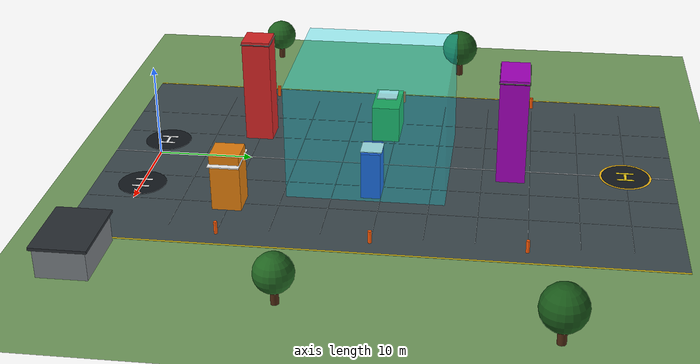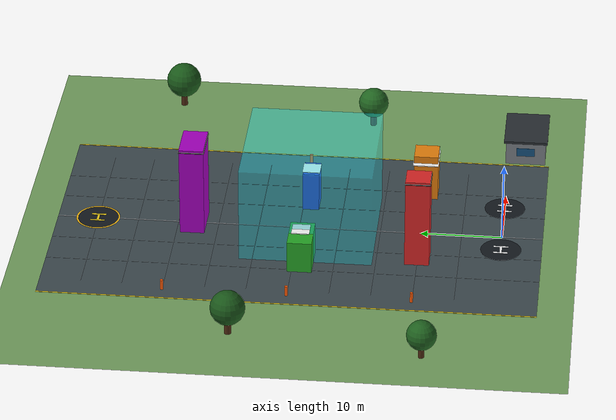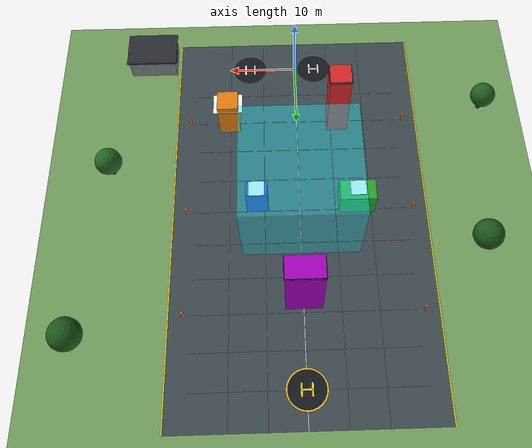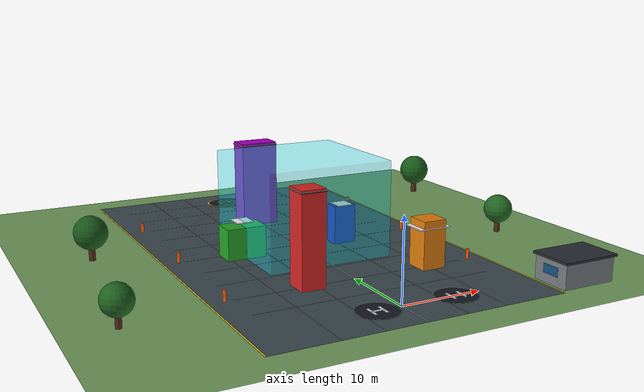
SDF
<?xml version="1.0" ?>
<sdf version="1.9">
  <world name="obstacle_world">

    <physics name="1ms" type="ignored">
      <max_step_size>0.001</max_step_size>
      <real_time_factor>1.0</real_time_factor>
    </physics>

    <scene>
      <ambient>0.72 0.76 0.82 1</ambient>
      <background>0.48 0.68 0.88 1</background>
      <sky/>
      <fog>
        <type>linear</type>
        <color>0.72 0.80 0.88 1</color>
        <start>140</start>
        <end>300</end>
        <density>0.002</density>
      </fog>
    </scene>

    <!-- GPS origin — must match PX4 SITL home position -->
    <spherical_coordinates>
      <surface_model>EARTH_WGS84</surface_model>
      <latitude_deg>47.397742</latitude_deg>
      <longitude_deg>8.545594</longitude_deg>
      <elevation>488.0</elevation>
      <heading_deg>0</heading_deg>
    </spherical_coordinates>

    <light name="sun" type="directional">
      <cast_shadows>true</cast_shadows>
      <pose>0 0 10 0 0 0</pose>
      <diffuse>1.0 1.0 1.0 1</diffuse>
      <specular>0.4 0.4 0.4 1</specular>
      <direction>-0.5 0.1 -0.9</direction>
    </light>

    <!-- ── Ground plane ─────────────────────────────────── -->
    <model name="ground_plane">
      <static>true</static>
      <link name="link">
        <collision name="collision">
          <geometry>
            <plane>
              <normal>0 0 1</normal>
              <size>300 300</size>
            </plane>
          </geometry>
          <surface>
            <friction><ode><mu>100</mu><mu2>50</mu2></ode></friction>
          </surface>
        </collision>
        <visual name="visual">
          <cast_shadows>false</cast_shadows>
          <geometry>
            <plane><normal>0 0 1</normal><size>300 300</size></plane>
          </geometry>
          <material>
            <ambient>0.45 0.62 0.37 1</ambient>
            <diffuse>0.45 0.62 0.37 1</diffuse>
            <specular>0.05 0.05 0.05 1</specular>
          </material>
        </visual>
      </link>
    </model>

    <!-- ── Flight-training course surface and 5 m reference grid ──
         These are visual-only so they do not alter vehicle dynamics. -->
    <model name="training_course">
      <static>true</static>
      <link name="course_markings">
        <visual name="course_surface">
          <pose>0 25 0.012 0 0 0</pose>
          <cast_shadows>false</cast_shadows>
          <geometry><box><size>36 60 0.02</size></box></geometry>
          <material>
            <ambient>0.20 0.25 0.27 1</ambient>
            <diffuse>0.24 0.29 0.31 1</diffuse>
            <specular>0.02 0.02 0.02 1</specular>
          </material>
        </visual>

        <!-- East/west course boundaries at +-18 m; both launch pads sit
             comfortably inside the front of the course. -->
        <visual name="boundary_west">
          <pose>-18 25 0.03 0 0 0</pose>
          <cast_shadows>false</cast_shadows>
          <geometry><box><size>0.18 60 0.025</size></box></geometry>
          <material><ambient>0.95 0.82 0.10 1</ambient><diffuse>0.95 0.82 0.10 1</diffuse></material>
        </visual>
        <visual name="boundary_east">
          <pose>18 25 0.03 0 0 0</pose>
          <cast_shadows>false</cast_shadows>
          <geometry><box><size>0.18 60 0.025</size></box></geometry>
          <material><ambient>0.95 0.82 0.10 1</ambient><diffuse>0.95 0.82 0.10 1</diffuse></material>
        </visual>

        <!-- Longitudinal grid lines at east=-10,-5,0,5,10 m. -->
        <visual name="grid_e_m10"><pose>-10 25 0.028 0 0 0</pose><cast_shadows>false</cast_shadows><geometry><box><size>0.055 60 0.022</size></box></geometry><material><ambient>0.55 0.61 0.63 1</ambient><diffuse>0.55 0.61 0.63 1</diffuse></material></visual>
        <visual name="grid_e_m5"><pose>-5 25 0.028 0 0 0</pose><cast_shadows>false</cast_shadows><geometry><box><size>0.055 60 0.022</size></box></geometry><material><ambient>0.55 0.61 0.63 1</ambient><diffuse>0.55 0.61 0.63 1</diffuse></material></visual>
        <visual name="grid_e_0"><pose>0 25 0.029 0 0 0</pose><cast_shadows>false</cast_shadows><geometry><box><size>0.12 60 0.024</size></box></geometry><material><ambient>0.88 0.90 0.92 1</ambient><diffuse>0.88 0.90 0.92 1</diffuse></material></visual>
        <visual name="grid_e_5"><pose>5 25 0.028 0 0 0</pose><cast_shadows>false</cast_shadows><geometry><box><size>0.055 60 0.022</size></box></geometry><material><ambient>0.55 0.61 0.63 1</ambient><diffuse>0.55 0.61 0.63 1</diffuse></material></visual>
        <visual name="grid_e_10"><pose>10 25 0.028 0 0 0</pose><cast_shadows>false</cast_shadows><geometry><box><size>0.055 60 0.022</size></box></geometry><material><ambient>0.55 0.61 0.63 1</ambient><diffuse>0.55 0.61 0.63 1</diffuse></material></visual>

        <!-- Cross-course grid lines every 5 m north of spawn. -->
        <visual name="grid_n_5"><pose>0 5 0.028 0 0 0</pose><cast_shadows>false</cast_shadows><geometry><box><size>30 0.055 0.022</size></box></geometry><material><ambient>0.55 0.61 0.63 1</ambient><diffuse>0.55 0.61 0.63 1</diffuse></material></visual>
        <visual name="grid_n_10"><pose>0 10 0.028 0 0 0</pose><cast_shadows>false</cast_shadows><geometry><box><size>30 0.055 0.022</size></box></geometry><material><ambient>0.55 0.61 0.63 1</ambient><diffuse>0.55 0.61 0.63 1</diffuse></material></visual>
        <visual name="grid_n_15"><pose>0 15 0.028 0 0 0</pose><cast_shadows>false</cast_shadows><geometry><box><size>30 0.055 0.022</size></box></geometry><material><ambient>0.55 0.61 0.63 1</ambient><diffuse>0.55 0.61 0.63 1</diffuse></material></visual>
        <visual name="grid_n_20"><pose>0 20 0.028 0 0 0</pose><cast_shadows>false</cast_shadows><geometry><box><size>30 0.055 0.022</size></box></geometry><material><ambient>0.55 0.61 0.63 1</ambient><diffuse>0.55 0.61 0.63 1</diffuse></material></visual>
        <visual name="grid_n_25"><pose>0 25 0.028 0 0 0</pose><cast_shadows>false</cast_shadows><geometry><box><size>30 0.055 0.022</size></box></geometry><material><ambient>0.55 0.61 0.63 1</ambient><diffuse>0.55 0.61 0.63 1</diffuse></material></visual>
        <visual name="grid_n_30"><pose>0 30 0.028 0 0 0</pose><cast_shadows>false</cast_shadows><geometry><box><size>30 0.055 0.022</size></box></geometry><material><ambient>0.55 0.61 0.63 1</ambient><diffuse>0.55 0.61 0.63 1</diffuse></material></visual>
        <visual name="grid_n_35"><pose>0 35 0.028 0 0 0</pose><cast_shadows>false</cast_shadows><geometry><box><size>30 0.055 0.022</size></box></geometry><material><ambient>0.55 0.61 0.63 1</ambient><diffuse>0.55 0.61 0.63 1</diffuse></material></visual>
        <visual name="grid_n_40"><pose>0 40 0.028 0 0 0</pose><cast_shadows>false</cast_shadows><geometry><box><size>30 0.055 0.022</size></box></geometry><material><ambient>0.55 0.61 0.63 1</ambient><diffuse>0.55 0.61 0.63 1</diffuse></material></visual>
        <visual name="grid_n_45"><pose>0 45 0.028 0 0 0</pose><cast_shadows>false</cast_shadows><geometry><box><size>30 0.055 0.022</size></box></geometry><material><ambient>0.55 0.61 0.63 1</ambient><diffuse>0.55 0.61 0.63 1</diffuse></material></visual>
        <visual name="grid_n_50"><pose>0 50 0.028 0 0 0</pose><cast_shadows>false</cast_shadows><geometry><box><size>30 0.055 0.022</size></box></geometry><material><ambient>0.55 0.61 0.63 1</ambient><diffuse>0.55 0.61 0.63 1</diffuse></material></visual>

        <!-- High-contrast launch pad (N=0 E=-3) and landing pad (N=50). -->
        <visual name="launch_pad">
          <pose>-3 0 0.045 0 0 0</pose><cast_shadows>false</cast_shadows>
          <geometry><cylinder><radius>2.5</radius><length>0.035</length></cylinder></geometry>
          <material><ambient>0.08 0.10 0.12 1</ambient><diffuse>0.08 0.10 0.12 1</diffuse></material>
        </visual>
        <visual name="launch_h_crossbar"><pose>-3 0 0.07 0 0 0</pose><cast_shadows>false</cast_shadows><geometry><box><size>1.7 0.28 0.025</size></box></geometry><material><ambient>0.95 0.95 0.95 1</ambient><diffuse>0.95 0.95 0.95 1</diffuse></material></visual>
        <visual name="launch_h_left"><pose>-3.7 0 0.07 0 0 0</pose><cast_shadows>false</cast_shadows><geometry><box><size>0.28 1.8 0.025</size></box></geometry><material><ambient>0.95 0.95 0.95 1</ambient><diffuse>0.95 0.95 0.95 1</diffuse></material></visual>
        <visual name="launch_h_right"><pose>-2.3 0 0.07 0 0 0</pose><cast_shadows>false</cast_shadows><geometry><box><size>0.28 1.8 0.025</size></box></geometry><material><ambient>0.95 0.95 0.95 1</ambient><diffuse>0.95 0.95 0.95 1</diffuse></material></visual>

        <!-- Second launch pad (px4_2 home, N=0 E=7), matching the
             original dark disc and white H markings. -->
        <visual name="launch_pad_2">
          <pose>7 0 0.045 0 0 0</pose><cast_shadows>false</cast_shadows>
          <geometry><cylinder><radius>2.5</radius><length>0.035</length></cylinder></geometry>
          <material><ambient>0.08 0.10 0.12 1</ambient><diffuse>0.08 0.10 0.12 1</diffuse></material>
        </visual>
        <visual name="launch_h2_crossbar"><pose>7 0 0.07 0 0 0</pose><cast_shadows>false</cast_shadows><geometry><box><size>1.7 0.28 0.025</size></box></geometry><material><ambient>0.95 0.95 0.95 1</ambient><diffuse>0.95 0.95 0.95 1</diffuse></material></visual>
        <visual name="launch_h2_left"><pose>6.3 0 0.07 0 0 0</pose><cast_shadows>false</cast_shadows><geometry><box><size>0.28 1.8 0.025</size></box></geometry><material><ambient>0.95 0.95 0.95 1</ambient><diffuse>0.95 0.95 0.95 1</diffuse></material></visual>
        <visual name="launch_h2_right"><pose>7.7 0 0.07 0 0 0</pose><cast_shadows>false</cast_shadows><geometry><box><size>0.28 1.8 0.025</size></box></geometry><material><ambient>0.95 0.95 0.95 1</ambient><diffuse>0.95 0.95 0.95 1</diffuse></material></visual>

        <visual name="landing_pad">
          <pose>0 50 0.045 0 0 0</pose><cast_shadows>false</cast_shadows>
          <geometry><cylinder><radius>2.5</radius><length>0.035</length></cylinder></geometry>
          <material><ambient>0.08 0.10 0.12 1</ambient><diffuse>0.08 0.10 0.12 1</diffuse></material>
        </visual>
        <visual name="landing_ring">
          <pose>0 50 0.055 0 0 0</pose><cast_shadows>false</cast_shadows>
          <geometry><cylinder><radius>2.72</radius><length>0.012</length></cylinder></geometry>
          <material>
            <ambient>0.95 0.72 0.08 1</ambient>
            <diffuse>0.95 0.72 0.08 1</diffuse>
            <emissive>0.35 0.22 0.02 1</emissive>
          </material>
        </visual>
        <visual name="landing_h_crossbar"><pose>0 50 0.07 0 0 0</pose><cast_shadows>false</cast_shadows><geometry><box><size>1.7 0.28 0.025</size></box></geometry><material><ambient>0.95 0.82 0.10 1</ambient><diffuse>0.95 0.82 0.10 1</diffuse></material></visual>
        <visual name="landing_h_left"><pose>-0.7 50 0.07 0 0 0</pose><cast_shadows>false</cast_shadows><geometry><box><size>0.28 1.8 0.025</size></box></geometry><material><ambient>0.95 0.82 0.10 1</ambient><diffuse>0.95 0.82 0.10 1</diffuse></material></visual>
        <visual name="landing_h_right"><pose>0.7 50 0.07 0 0 0</pose><cast_shadows>false</cast_shadows><geometry><box><size>0.28 1.8 0.025</size></box></geometry><material><ambient>0.95 0.82 0.10 1</ambient><diffuse>0.95 0.82 0.10 1</diffuse></material></visual>
      </link>
    </model>

    <!-- Safety beacons mark the course perimeter without adding collisions. -->
    <model name="course_beacons">
      <static>true</static>
      <link name="beacons">
        <visual name="west_10"><pose>-16 10 0.65 0 0 0</pose><geometry><cylinder><radius>0.18</radius><length>1.3</length></cylinder></geometry><material><ambient>1 0.35 0.02 1</ambient><diffuse>1 0.35 0.02 1</diffuse><emissive>0.3 0.08 0 1</emissive></material></visual>
        <visual name="east_10"><pose>16 10 0.65 0 0 0</pose><geometry><cylinder><radius>0.18</radius><length>1.3</length></cylinder></geometry><material><ambient>1 0.35 0.02 1</ambient><diffuse>1 0.35 0.02 1</diffuse><emissive>0.3 0.08 0 1</emissive></material></visual>
        <visual name="west_25"><pose>-16 25 0.65 0 0 0</pose><geometry><cylinder><radius>0.18</radius><length>1.3</length></cylinder></geometry><material><ambient>1 0.35 0.02 1</ambient><diffuse>1 0.35 0.02 1</diffuse><emissive>0.3 0.08 0 1</emissive></material></visual>
        <visual name="east_25"><pose>16 25 0.65 0 0 0</pose><geometry><cylinder><radius>0.18</radius><length>1.3</length></cylinder></geometry><material><ambient>1 0.35 0.02 1</ambient><diffuse>1 0.35 0.02 1</diffuse><emissive>0.3 0.08 0 1</emissive></material></visual>
        <visual name="west_40"><pose>-16 40 0.65 0 0 0</pose><geometry><cylinder><radius>0.18</radius><length>1.3</length></cylinder></geometry><material><ambient>1 0.35 0.02 1</ambient><diffuse>1 0.35 0.02 1</diffuse><emissive>0.3 0.08 0 1</emissive></material></visual>
        <visual name="east_40"><pose>16 40 0.65 0 0 0</pose><geometry><cylinder><radius>0.18</radius><length>1.3</length></cylinder></geometry><material><ambient>1 0.35 0.02 1</ambient><diffuse>1 0.35 0.02 1</diffuse><emissive>0.3 0.08 0 1</emissive></material></visual>
      </link>
    </model>

    <!-- ── OB1: Red building — east=-6m, north=10m, 11.5m tall — taller than the fence ceiling ── -->
    <model name="obstacle_1">
      <static>true</static>
      <pose>-6 10 5.75 0 0 0</pose>
      <link name="link">
        <collision name="collision">
          <geometry><box><size>3 3 11.5</size></box></geometry>
        </collision>
        <visual name="visual">
          <geometry><box><size>3 3 11.5</size></box></geometry>
          <material>
            <ambient>0.85 0.15 0.15 1</ambient>
            <diffuse>0.85 0.15 0.15 1</diffuse>
            <specular>0.1 0.1 0.1 1</specular>
          </material>
        </visual>
        <visual name="roof_marker">
          <pose>0 0 5.45 0 0 0</pose>
          <geometry><box><size>3.18 3.18 0.12</size></box></geometry>
          <material><ambient>0.08 0.08 0.08 1</ambient><diffuse>0.08 0.08 0.08 1</diffuse></material>
        </visual>
      </link>
    </model>

    <!-- ── OB2: Orange tower — east=10m, north=10m, 6m tall ── -->
    <model name="obstacle_2">
      <static>true</static>
      <pose>10 10 3 0 0 0</pose>
      <link name="link">
        <collision name="collision">
          <geometry><box><size>3 3 6</size></box></geometry>
        </collision>
        <visual name="visual">
          <geometry><box><size>3 3 6</size></box></geometry>
          <material>
            <ambient>0.9 0.5 0.05 1</ambient>
            <diffuse>0.9 0.5 0.05 1</diffuse>
            <specular>0.1 0.1 0.1 1</specular>
          </material>
        </visual>
        <visual name="roof_marker">
          <pose>0 0 2.03 0 0 0</pose>
          <geometry><box><size>4.18 3.18 0.12</size></box></geometry>
          <material><ambient>0.98 0.98 0.98 1</ambient><diffuse>0.98 0.98 0.98 1</diffuse></material>
        </visual>
      </link>
    </model>

    <!-- ── OB3: Green block — east=-8m, north=24m, 4m tall — widened, tighter corridor with OB4 ── -->
    <model name="obstacle_3">
      <static>true</static>
      <pose>-8 24 2 0 0 0</pose>
      <link name="link">
        <collision name="collision">
          <geometry><box><size>5 3 4</size></box></geometry>
        </collision>
        <visual name="visual">
          <geometry><box><size>5 3 4</size></box></geometry>
          <material>
            <ambient>0.15 0.65 0.15 1</ambient>
            <diffuse>0.15 0.65 0.15 1</diffuse>
            <specular>0.1 0.1 0.1 1</specular>
          </material>
        </visual>
        <visual name="roof_marker">
          <pose>0 0 2.53 0 0 0</pose>
          <geometry><box><size>2.18 2.18 0.12</size></box></geometry>
          <material><ambient>0.98 0.98 0.98 1</ambient><diffuse>0.98 0.98 0.98 1</diffuse></material>
        </visual>
      </link>
    </model>

    <!-- ── OB4: Blue pillar — east=6m, north=24m, 5m tall — widened, tighter corridor with OB3 ── -->
    <model name="obstacle_4">
      <static>true</static>
      <pose>6 24 2.5 0 0 0</pose>
      <link name="link">
        <collision name="collision">
          <geometry><box><size>3 2 5</size></box></geometry>
        </collision>
        <visual name="visual">
          <geometry><box><size>3 2 5</size></box></geometry>
          <material>
            <ambient>0.15 0.15 0.85 1</ambient>
            <diffuse>0.15 0.15 0.85 1</diffuse>
            <specular>0.1 0.1 0.1 1</specular>
          </material>
        </visual>
        <visual name="roof_marker">
          <pose>0 0 2.53 0 0 0</pose>
          <geometry><box><size>2.18 2.18 0.12</size></box></geometry>
          <material><ambient>0.98 0.98 0.98 1</ambient><diffuse>0.98 0.98 0.98 1</diffuse></material>
        </visual>
      </link>
    </model>

    <!-- ── OB5: Purple wall — east=0m, north=38m, 11.5m tall — taller than the fence ceiling ── -->
    <model name="obstacle_5">
      <static>true</static>
      <pose>0 38 5.75 0 0 0</pose>
      <link name="link">
        <collision name="collision">
          <geometry><box><size>5 3 11.5</size></box></geometry>
        </collision>
        <visual name="visual">
          <geometry><box><size>5 3 11.5</size></box></geometry>
          <material>
            <ambient>0.65 0.0 0.75 1</ambient>
            <diffuse>0.65 0.0 0.75 1</diffuse>
            <specular>0.1 0.1 0.1 1</specular>
          </material>
        </visual>
        <visual name="roof_marker">
          <pose>0 0 5.45 0 0 0</pose>
          <geometry><box><size>5.18 3.18 0.12</size></box></geometry>
          <material><ambient>0.08 0.08 0.08 1</ambient><diffuse>0.08 0.08 0.08 1</diffuse></material>
        </visual>
      </link>
    </model>

    <!-- ── GPS-denied visualization (NED N[15.5,31.5] E[-8,8]).
         Gazebo pose is ENU: x=east, y=north, z=up. Translucent prism only —
         does not disable NavSat/EKF GPS (that is Pass 2). ── -->
    <model name="gps_denied_zone">
      <static>true</static>
      <pose>0 23.5 6 0 0 0</pose>
      <link name="link">
        <visual name="volume">
          <visibility_flags>2</visibility_flags>
          <transparency>0.82</transparency>
          <geometry><box><size>16 16 12</size></box></geometry>
          <material>
            <ambient>0.15 0.85 1 0.18</ambient>
            <diffuse>0.15 0.85 1 0.18</diffuse>
            <emissive>0.03 0.16 0.20 1</emissive>
            <specular>0.2 0.05 0.25 0.1</specular>
          </material>
        </visual>
        <visual name="outline">
          <visibility_flags>2</visibility_flags>
          <transparency>0.62</transparency>
          <geometry><box><size>16.18 16.18 12.18</size></box></geometry>
          <material>
            <ambient>0.10 0.95 1 0.38</ambient>
            <diffuse>0.10 0.95 1 0.38</diffuse>
            <emissive>0.04 0.22 0.24 1</emissive>
            <specular>0.1 0.3 0.3 0.1</specular>
          </material>
        </visual>
      </link>
    </model>

    <!-- ── Distant visual landmarks add depth and orientation cues. ── -->
    <model name="landscape_landmarks">
      <static>true</static>
      <link name="landmarks">
        <!-- Tree clusters stay well outside the geofenced training corridor. -->
        <visual name="tree_w1_trunk"><pose>-28 8 1.1 0 0 0</pose><geometry><cylinder><radius>0.35</radius><length>2.2</length></cylinder></geometry><material><ambient>0.30 0.16 0.07 1</ambient><diffuse>0.30 0.16 0.07 1</diffuse></material></visual>
        <visual name="tree_w1_crown"><pose>-28 8 3.0 0 0 0</pose><geometry><sphere><radius>1.8</radius></sphere></geometry><material><ambient>0.12 0.38 0.12 1</ambient><diffuse>0.12 0.38 0.12 1</diffuse></material></visual>
        <visual name="tree_w2_trunk"><pose>-25 31 1.3 0 0 0</pose><geometry><cylinder><radius>0.4</radius><length>2.6</length></cylinder></geometry><material><ambient>0.30 0.16 0.07 1</ambient><diffuse>0.30 0.16 0.07 1</diffuse></material></visual>
        <visual name="tree_w2_crown"><pose>-25 31 3.5 0 0 0</pose><geometry><sphere><radius>2.1</radius></sphere></geometry><material><ambient>0.10 0.34 0.10 1</ambient><diffuse>0.10 0.34 0.10 1</diffuse></material></visual>
        <visual name="tree_e1_trunk"><pose>27 18 1.2 0 0 0</pose><geometry><cylinder><radius>0.38</radius><length>2.4</length></cylinder></geometry><material><ambient>0.30 0.16 0.07 1</ambient><diffuse>0.30 0.16 0.07 1</diffuse></material></visual>
        <visual name="tree_e1_crown"><pose>27 18 3.2 0 0 0</pose><geometry><sphere><radius>1.9</radius></sphere></geometry><material><ambient>0.13 0.40 0.13 1</ambient><diffuse>0.13 0.40 0.13 1</diffuse></material></visual>
        <visual name="tree_e2_trunk"><pose>30 43 1.35 0 0 0</pose><geometry><cylinder><radius>0.42</radius><length>2.7</length></cylinder></geometry><material><ambient>0.30 0.16 0.07 1</ambient><diffuse>0.30 0.16 0.07 1</diffuse></material></visual>
        <visual name="tree_e2_crown"><pose>30 43 3.6 0 0 0</pose><geometry><sphere><radius>2.2</radius></sphere></geometry><material><ambient>0.10 0.35 0.10 1</ambient><diffuse>0.10 0.35 0.10 1</diffuse></material></visual>

        <!-- Control shelter at the side of the launch area. -->
        <visual name="shelter"><pose>22 -2 1.5 0 0 0</pose><geometry><box><size>7 5 3</size></box></geometry><material><ambient>0.48 0.50 0.52 1</ambient><diffuse>0.48 0.50 0.52 1</diffuse></material></visual>
        <visual name="shelter_roof"><pose>22 -2 3.15 0 0 0</pose><geometry><box><size>7.5 5.5 0.3</size></box></geometry><material><ambient>0.16 0.18 0.20 1</ambient><diffuse>0.16 0.18 0.20 1</diffuse></material></visual>
        <visual name="shelter_window"><pose>18.49 -2 1.7 0 0 0</pose><geometry><box><size>0.03 2.3 1.1</size></box></geometry><material><ambient>0.08 0.32 0.50 1</ambient><diffuse>0.08 0.32 0.50 1</diffuse><specular>0.8 0.8 0.8 1</specular></material></visual>
      </link>
    </model>

  </world>
</sdf>
